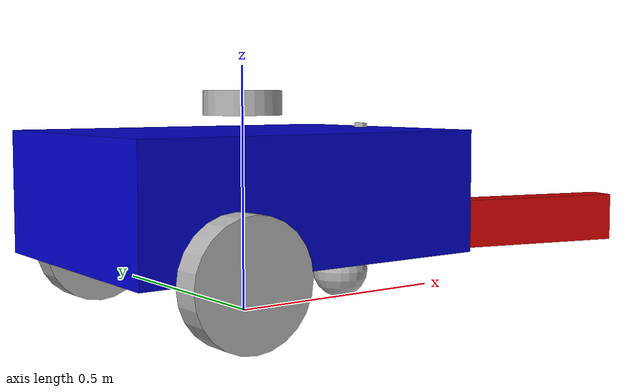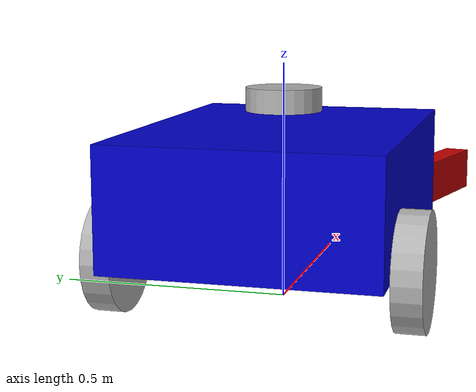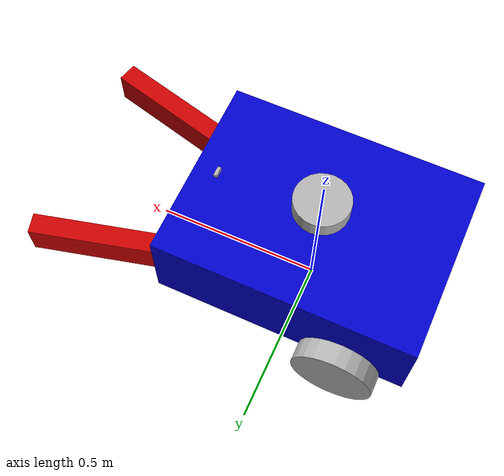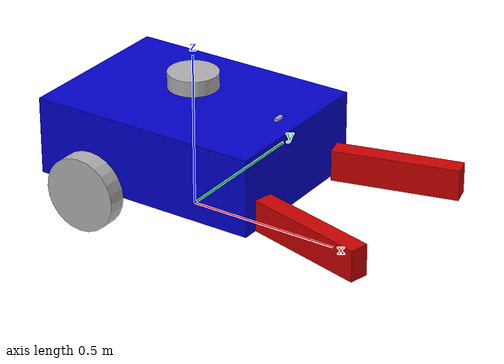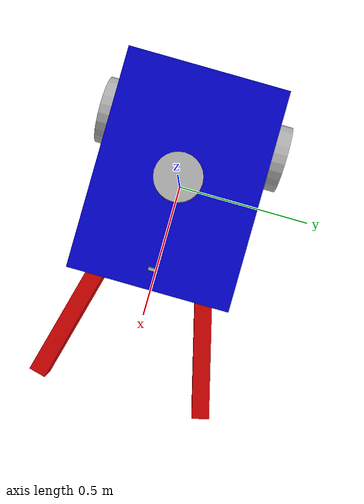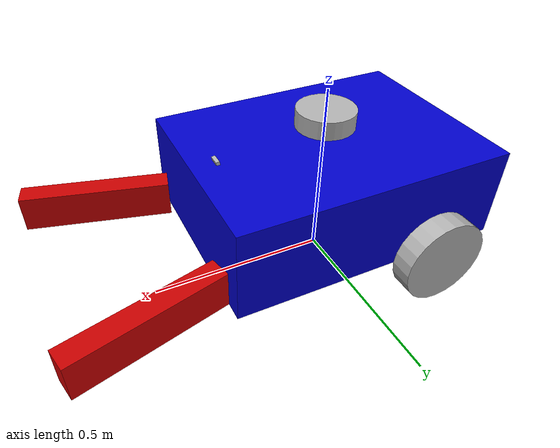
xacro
<?xml version="1.0"?>
<robot name="flap_tb3_bot" xmlns:xacro="http://www.ros.org/wiki/xacro">

  <!-- PROPERTIES (SCALED UP)    -->
  <!-- Robot size increased ~30% -->
  <xacro:property name="base_length" value="0.75"/>
  <xacro:property name="base_width"  value="0.55"/>
  <xacro:property name="base_height" value="0.25"/>

  <xacro:property name="wheel_radius"  value="0.12"/>
  <xacro:property name="wheel_length"  value="0.06"/>
  <xacro:property name="caster_radius" value="0.06"/>
  <xacro:property name="pi" value="3.14159265359"/>

  <!-- Flap (finger) dimensions - LONGER + WIDER -->
  <xacro:property name="finger_length" value="0.40"/>  <!-- was 0.2 -->
  <xacro:property name="finger_width"  value="0.06"/>  <!-- was 0.03 -->
  <xacro:property name="finger_height" value="0.10"/>  <!-- slightly taller -->

  <!-- LIDAR dimensions (slightly larger) -->
  <xacro:property name="lidar_radius"        value="0.08"/>
  <xacro:property name="lidar_length"        value="0.05"/>
  <xacro:property name="lidar_height_offset" value="${base_height/2.0 + 0.18}"/>

  <!-- CAMERA (mount params) -->
  <xacro:property name="camera_x_offset" value="${base_length/2 - 0.07}"/>
  <xacro:property name="camera_z_offset" value="${base_height/2 + 0.12}"/>
  <xacro:property name="camera_pitch"    value="0.18"/>

  <!-- Control -->
  <xacro:property name="max_linear_acceleration" value="10"/>
  <xacro:property name="wheel_separation" value="${base_width + wheel_length}"/>

  <!-- MATERIALS                  -->
  <material name="blue">
    <color rgba="0.0 0.0 0.8 1.0"/>
  </material>
  <material name="grey">
    <color rgba="0.7 0.7 0.7 1.0"/>
  </material>
  <material name="red">
    <color rgba="0.8 0.0 0.0 1.0"/>
  </material>

  <!-- BASE & FOOTPRINT           -->

  <link name="base_footprint"/>

  <link name="base_link">
    <visual>
      <origin xyz="0 0 ${base_height/2.0}" rpy="0 0 0"/>
      <geometry>
        <box size="${base_length} ${base_width} ${base_height}"/>
      </geometry>
      <material name="blue"/>
    </visual>
    <collision>
      <origin xyz="0 0 ${base_height/2.0}" rpy="0 0 0"/>
      <geometry>
        <box size="${base_length} ${base_width} ${base_height}"/>
      </geometry>
    </collision>
    <inertial>
      <origin xyz="0 0 ${base_height/2.0}" rpy="0 0 0"/>
      <mass value="7.0"/>
      <inertia ixx="0.2" iyy="0.2" izz="0.2" ixy="0" ixz="0" iyz="0"/>
    </inertial>
  </link>

<!-- Raise base so wheels touch ground -->
  <joint name="robot_base_joint" type="fixed">
    <parent link="base_footprint"/>
    <child link="base_link"/>
    <origin xyz="0 0 ${wheel_radius}"/>
  </joint>

  <!-- WHEEL MACRO                -->
  <xacro:macro name="wheel_link" params="prefix">
    <link name="${prefix}_wheel_link">
      <visual>
        <origin xyz="0 0 0" rpy="${pi/2} 0 0"/>
        <geometry>
          <cylinder radius="${wheel_radius}" length="${wheel_length}"/>
        </geometry>
        <material name="grey"/>
      </visual>
      <collision>
        <origin xyz="0 0 0" rpy="${pi/2} 0 0"/>
        <geometry>
          <cylinder radius="${wheel_radius}" length="${wheel_length}"/>
        </geometry>
      </collision>
      <inertial>
        <origin xyz="0 0 0"/>
        <mass value="0.3"/>
        <inertia ixx="0.002" iyy="0.002" izz="0.002" ixy="0" ixz="0" iyz="0"/>
      </inertial>
    </link>

    <gazebo reference="${prefix}_wheel_link">
      <mu1>1.0</mu1>
      <mu2>1.0</mu2>
    </gazebo>
  </xacro:macro>

  <xacro:wheel_link prefix="right"/>
  <xacro:wheel_link prefix="left"/>

  <!-- CASTER WHEEL               -->
  <link name="caster_wheel_link">
    <visual>
      <geometry>
        <sphere radius="${caster_radius}"/>
      </geometry>
      <material name="grey"/>
    </visual>
    <collision>
      <geometry>
        <sphere radius="${caster_radius}"/>
      </geometry>
    </collision>
    <inertial>
      <origin xyz="0 0 0"/>
      <mass value="0.07"/>
      <inertia ixx="0.0007" iyy="0.0007" izz="0.0007" ixy="0" ixz="0" iyz="0"/>
    </inertial>
  </link>

  <gazebo reference="caster_wheel_link">
    <mu1>0.000001</mu1>
    <mu2>0.000001</mu2>
  </gazebo>

  <!-- FLAPS / FINGERS (WIDER)    -->
  <link name="left_flap_link">
    <visual>
      <!-- rotated slightly outward (counter-clockwise) -->
      <origin xyz="0 0 0" rpy="0 0 0.25"/>
      <geometry>
        <box size="${finger_length} ${finger_width} ${finger_height}"/>
      </geometry>
      <material name="red"/>
    </visual>
    <collision>
      <origin xyz="0 0 0" rpy="0 0 0.25"/>
      <geometry>
        <box size="${finger_length} ${finger_width} ${finger_height}"/>
      </geometry>
    </collision>
    <inertial>
      <origin xyz="${finger_length/2} 0 ${finger_height/2}"/>
      <mass value="0.10"/>
      <inertia ixx="0.00008" iyy="0.00008" izz="0.00009" ixy="0" ixz="0" iyz="0"/>
    </inertial>
  </link>

  <link name="right_flap_link">
    <visual>
      <!-- rotated slightly outward (clockwise) -->
      <origin xyz="0 0 0" rpy="0 0 -0.25"/>
      <geometry>
        <box size="${finger_length} ${finger_width} ${finger_height}"/>
      </geometry>
      <material name="red"/>
    </visual>
    <collision>
      <origin xyz="0 0 0" rpy="0 0 -0.25"/>
      <geometry>
        <box size="${finger_length} ${finger_width} ${finger_height}"/>
      </geometry>
    </collision>
    <inertial>
      <origin xyz="${finger_length/2} 0 ${finger_height/2}"/>
      <mass value="0.10"/>
      <inertia ixx="0.00008" iyy="0.00008" izz="0.00009" ixy="0" ixz="0" iyz="0"/>
    </inertial>
  </link>

  <!-- LIDAR                      -->
  <link name="lidar_link">
    <visual>
      <geometry>
        <cylinder radius="${lidar_radius}" length="${lidar_length}"/>
      </geometry>
      <material name="grey"/>
    </visual>
    <collision>
      <origin xyz="0 0 0"/>
      <geometry>
        <cylinder radius="${lidar_radius}" length="${lidar_length}"/>
      </geometry>
    </collision>
    <inertial>
      <origin xyz="0 0 0"/>
      <mass value="0.15"/>
      <inertia ixx="0.0007" iyy="0.0007" izz="0.0007" ixy="0" ixz="0" iyz="0"/>
    </inertial>
  </link>

  <!-- LIDAR sensor: Laser system, frame_id = lidar_link -->
  <gazebo reference="lidar_link">
    <sensor name='gpu_lidar' type='gpu_lidar'>
      <always_on>true</always_on>
      <visualize>true</visualize>
      <pose>0 0 0 0 0 0</pose>
      <update_rate>5</update_rate>
      <topic>scan</topic>
      <gz_frame_id>lidar_link</gz_frame_id>
      <lidar>
        <scan>
          <horizontal>
            <samples>640</samples>
            <resolution>1</resolution>
            <min_angle>-3.1416</min_angle>
            <max_angle>3.1416</max_angle>
          </horizontal>
        </scan>
        <range>
          <min>0.5</min>
          <max>8.0</max>
          <resolution>0.01</resolution>
        </range>
        <noise>
          <type>gaussian</type>
          <mean>0.0</mean>
          <stddev>0.01</stddev>
        </noise>
        <frame_id>lidar_link</frame_id>
      </lidar>
      <always_on>1</always_on>
      <visualize>true</visualize>
    </sensor>
  </gazebo>

  <!-- CAMERA (with optical frame) -->

  <joint name="camera_joint" type="fixed">
    <parent link="base_link"/>
    <child link="camera_link"/>
    <origin xyz="${camera_x_offset} 0 ${camera_z_offset}" rpy="0 ${camera_pitch} 0"/>
  </joint>

  <link name="camera_link">
    <visual>
      <geometry>
        <box size="0.010 0.03 0.03"/>
      </geometry>
      <material name="grey"/>
    </visual>

    <visual>
      <origin xyz="0 0 -0.05" rpy="0 0 0"/>
      <geometry>
        <cylinder radius="0.002" length="0.1"/>
      </geometry>
      <material name="grey"/>
    </visual>

    <collision>
      <geometry>
        <box size="0.010 0.03 0.03"/>
      </geometry>
    </collision>

    <inertial>
      <origin xyz="0 0 0"/>
      <mass value="0.10"/>
      <inertia ixx="0.0002" iyy="0.0002" izz="0.0002" ixy="0" ixz="0" iyz="0"/>
    </inertial>
  </link>

  <joint name="camera_optical_joint" type="fixed">
    <parent link="camera_link"/>
    <child link="camera_link_optical"/>
    <origin xyz="0 0 0" rpy="${-pi/2} 0 ${-pi/2}"/>
  </joint>

  <link name="camera_link_optical"/>

  <gazebo reference="camera_link">
    <material>Gazebo/Grey</material>

    <sensor name="camera" type="camera">
      <pose>0 0 0 0 0 0</pose>
      <visualize>true</visualize>
      <update_rate>10</update_rate>

      <camera>
        <camera_info_topic>camera/camera_info</camera_info_topic>
        <horizontal_fov>1.089</horizontal_fov>
        <image>
          <format>R8G8B8</format>
          <width>640</width>
          <height>480</height>
        </image>
        <clip>
          <near>0.05</near>
          <far>8.0</far>
        </clip>
      </camera>

      <topic>camera/image_raw</topic>
      <gz_frame_id>camera_link_optical</gz_frame_id>
    </sensor>
  </gazebo>

  <!-- JOINTS                     -->

  <!-- Wheels -->
  <joint name="base_right_wheel_joint" type="continuous">
    <parent link="base_link"/>
    <child link="right_wheel_link"/>
    <origin xyz="${-base_length/4} ${-wheel_separation/2} 0"/>
    <axis xyz="0 1 0"/>
  </joint>

  <joint name="base_left_wheel_joint" type="continuous">
    <parent link="base_link"/>
    <child link="left_wheel_link"/>
    <origin xyz="${-base_length/4} ${wheel_separation/2} 0"/>
    <axis xyz="0 1 0"/>
  </joint>

  <!-- Caster -->
  <joint name="base_caster_wheel_joint" type="fixed">
    <parent link="base_link"/>
    <child link="caster_wheel_link"/>
    <origin xyz="${base_length/3} 0 ${-(wheel_radius - caster_radius)}"/>
  </joint>

  <joint name="left_flap_joint" type="revolute">
    <parent link="base_link"/>
    <child link="left_flap_link"/>
    <origin
      xyz="${base_length/2 + finger_length/2} ${base_width/2 - finger_width/2} ${finger_height/2}"
      rpy="0 0 0"/>
    <axis xyz="0 0 -1"/>
    <limit lower="0" upper="1.2" effort="10" velocity="1.5"/>
  </joint>

  <joint name="right_flap_joint" type="revolute">
    <parent link="base_link"/>
    <child link="right_flap_link"/>
    <origin
      xyz="${base_length/2 + finger_length/2} ${-(base_width/2 - finger_width/2)} ${finger_height/2}"
      rpy="0 0 0"/>
    <axis xyz="0 0 1"/>
    <limit lower="0" upper="1.2" effort="10" velocity="1.5"/>
  </joint>

  <!-- LIDAR joint -->
  <joint name="lidar_joint" type="fixed">
    <parent link="base_link"/>
    <child link="lidar_link"/>
    <origin xyz="0 0 ${lidar_height_offset}"/>
  </joint>

<!-- IMU Sensor -->
  <joint name="imu_joint" type="fixed">
    <origin xyz="0 0 0" rpy="0 0 0" />
    <parent link="base_link"/>
    <child link="imu_link" />
  </joint>

  <gazebo reference="imu_link">
    <sensor name="imu" type="imu">
      <always_on>true</always_on>
      <update_rate>200</update_rate>
      <visualize>true</visualize>
      <topic>imu</topic>
      <enable_metrics>true</enable_metrics>
      <gz_frame_id>imu_link</gz_frame_id>
    </sensor>
  </gazebo>

  <link name="imu_link" />
  <!-- GAZEBO PLUGINS             -->
  <gazebo>

    <!-- Diff drive plugin (wheels) -->
    <plugin filename="gz-sim-diff-drive-system" name="gz::sim::systems::DiffDrive">
      <right_joint>base_right_wheel_joint</right_joint>
      <left_joint>base_left_wheel_joint</left_joint>

      <wheel_separation>${wheel_separation}</wheel_separation>
      <wheel_radius>${wheel_radius}</wheel_radius>

      <max_linear_acceleration>${max_linear_acceleration}</max_linear_acceleration>

      <topic>cmd_vel</topic>

    </plugin>

    <!-- Joint state publisher -->
    <plugin filename="gz-sim-joint-state-publisher-system" name="gz::sim::systems::JointStatePublisher">
      <topic>joint_states</topic>
      <joint_name>base_right_wheel_joint</joint_name>
      <joint_name>base_left_wheel_joint</joint_name>
      <joint_name>left_flap_joint</joint_name>
      <joint_name>right_flap_joint</joint_name>
    </plugin>

    <!-- Flap position controllers (topics unchanged) -->
    <plugin
      filename="gz-sim-joint-position-controller-system"
      name="gz::sim::systems::JointPositionController">
      <joint_name>left_flap_joint</joint_name>
      <topic>left_flap_controller/cmd_pos</topic>
      <p_gain>50.0</p_gain>
    </plugin>

    <plugin
      filename="gz-sim-joint-position-controller-system"
      name="gz::sim::systems::JointPositionController">
      <joint_name>right_flap_joint</joint_name>
      <topic>right_flap_controller/cmd_pos</topic>
      <p_gain>50.0</p_gain>
    </plugin>

    <plugin
      filename="gz-sim-odometry-publisher-system"
      name="gz::sim::systems::OdometryPublisher">
      <odom_frame>odom</odom_frame>
      <robot_base_frame>base_footprint</robot_base_frame>
      <odom_publish_frequency>50</odom_publish_frequency>
      <odom_topic>/odom</odom_topic>
      <tf_topic>/tf</tf_topic>
      <dimensions>2</dimensions>
    </plugin>
  </gazebo>
</robot>
